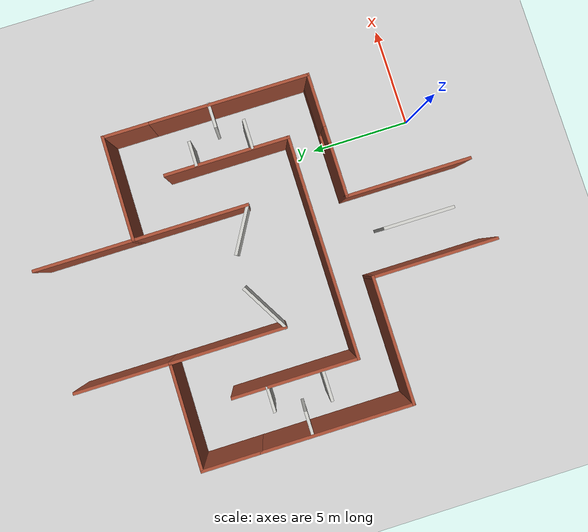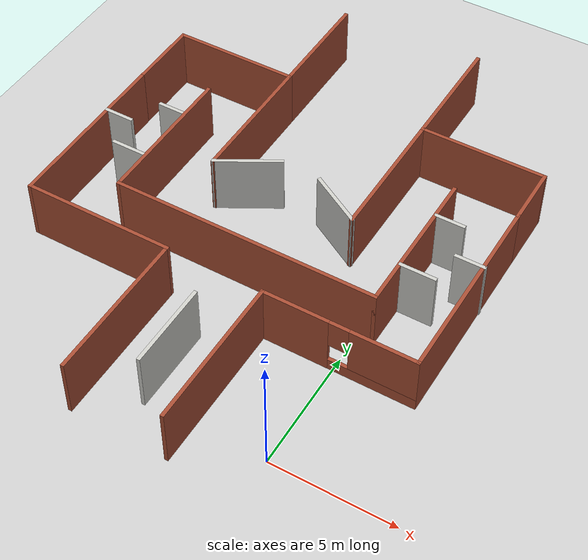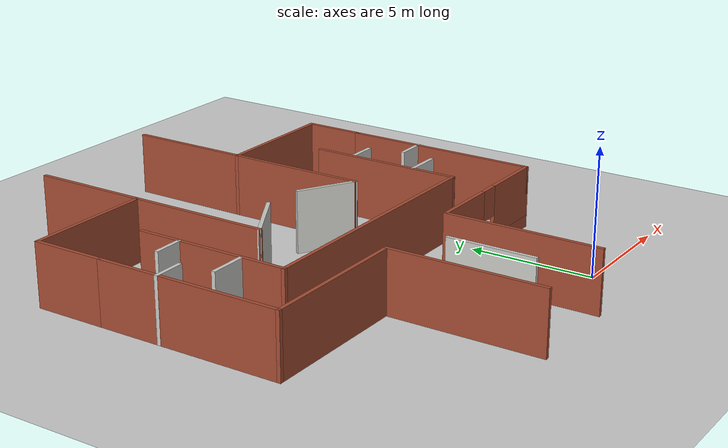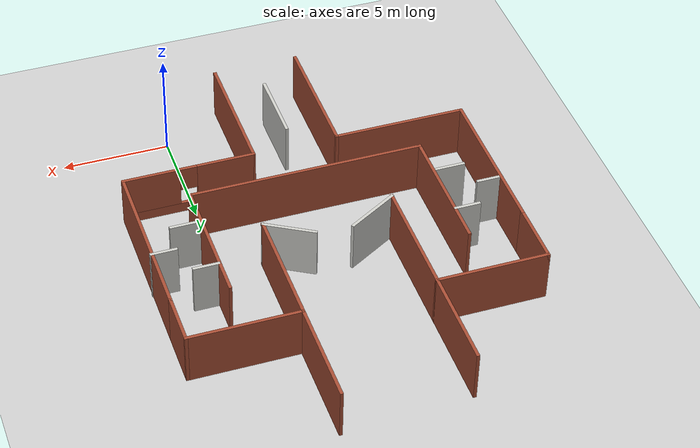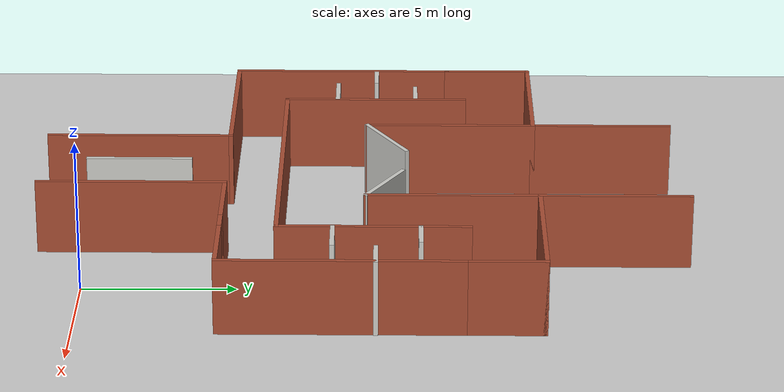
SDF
<sdf version="1.6">
 <world name="default">
  <light name="sun" type="directional">
   <pose>0 0 10 0 -0 0</pose>
   <diffuse>0.8 0.8 0.8 1</diffuse>
   <specular>0.2 0.2 0.2 1</specular>
   <attenuation>
    <range>1000</range>
    <constant>0.9</constant>
    <linear>0.01</linear>
    <quadratic>0.001</quadratic>
   </attenuation>
   <direction>-0.5 0.1 -0.9</direction>
  </light>
  <model name="ground_plane">
   <static>1</static>
   <link name="link">
    <collision name="collision">
     <geometry><plane><normal>0 0 1</normal><size>100 100</size></plane></geometry>
     <surface><friction><ode><mu>100</mu><mu2>50</mu2></ode></friction></surface>
    </collision>
    <visual name="visual">
     <cast_shadows>0</cast_shadows>
     <geometry><plane><normal>0 0 1</normal><size>100 100</size></plane></geometry>
     <material>
      <script><uri>file://media/materials/scripts/gazebo.material</uri><name>Gazebo/Grey</name></script>
     </material>
    </visual>
   </link>
  </model>
  <gravity>0 0 -9.8</gravity>
  <magnetic_field>6e-06 2.3e-05 -4.2e-05</magnetic_field>
  <atmosphere type="adiabatic"/>
  <physics name="default_physics" default="0" type="ode">
   <max_step_size>0.001</max_step_size>
   <real_time_factor>1</real_time_factor>
   <real_time_update_rate>1000</real_time_update_rate>
  </physics>
  <scene><ambient>0.4 0.4 0.4 1</ambient><background>0.7 0.7 0.7 1</background><shadows>1</shadows></scene>
  <audio><device>default</device></audio>
  <spherical_coordinates>
   <surface_model>EARTH_WGS84</surface_model>
   <latitude_deg>0</latitude_deg>
   <longitude_deg>0</longitude_deg>
   <elevation>0</elevation>
   <heading_deg>0</heading_deg>
  </spherical_coordinates>
  <model name="robotech_vc_maze">
   <pose>-4.88065 8.9736 0 0 -0 0</pose>
   <link name="Wall_13">
    <collision name="Wall_13_Collision">
     <geometry><box><size>3.5 0.15 2.5</size></box></geometry>
     <pose>0 0 1.25 0 -0 0</pose>
    </collision>
    <visual name="Wall_13_Visual">
     <pose>0 0 1.25 0 -0 0</pose>
     <geometry><box><size>3.5 0.15 2.5</size></box></geometry>
     <material>
      <script><uri>file://media/materials/scripts/gazebo.material</uri><name>Gazebo/CeilingTiled</name></script>
      <ambient>1 1 1 1</ambient>
     </material>
     <meta><layer>0</layer></meta>
    </visual>
    <pose>0.00196 -7.39954 0 0 -0 1.5708</pose>
   </link>
   <link name="Wall_15">
    <collision name="Wall_15_Collision">
     <geometry><box><size>6.25 0.15 2.5</size></box></geometry>
     <pose>0 0 1.25 0 -0 0</pose>
    </collision>
    <visual name="Wall_15_Visual">
     <pose>0 0 1.25 0 -0 0</pose>
     <geometry><box><size>6.25 0.15 2.5</size></box></geometry>
     <material>
      <script><uri>file://media/materials/scripts/gazebo.material</uri><name>Gazebo/Bricks</name></script>
      <ambient>1 1 1 1</ambient>
     </material>
     <meta><layer>0</layer></meta>
    </visual>
    <pose>1.97551 -7.52132 0 0 -0 1.5708</pose>
   </link>
   <link name="Wall_17">
    <collision name="Wall_17_Collision">
     <geometry><box><size>6.25 0.15 2.5</size></box></geometry>
     <pose>0 0 1.25 0 -0 0</pose>
    </collision>
    <visual name="Wall_17_Visual">
     <pose>0 0 1.25 0 -0 0</pose>
     <geometry><box><size>6.25 0.15 2.5</size></box></geometry>
     <material>
      <script><uri>file://media/materials/scripts/gazebo.material</uri><name>Gazebo/Bricks</name></script>
      <ambient>1 1 1 1</ambient>
     </material>
     <meta><layer>0</layer></meta>
    </visual>
    <pose>-5.06006 -4.47868 0 0 -0 3.14159</pose>
   </link>
   <link name="Wall_18">
    <collision name="Wall_18_Collision">
     <geometry><box><size>7.5 0.15 2.5</size></box></geometry>
     <pose>0 0 1.25 0 -0 0</pose>
    </collision>
    <visual name="Wall_18_Visual">
     <pose>0 0 1.25 0 -0 0</pose>
     <geometry><box><size>7.5 0.15 2.5</size></box></geometry>
     <material>
      <script><uri>file://media/materials/scripts/gazebo.material</uri><name>Gazebo/Bricks</name></script>
      <ambient>1 1 1 1</ambient>
     </material>
     <meta><layer>0</layer></meta>
    </visual>
    <pose>-8.11007 -0.803679 0 0 -0 1.5708</pose>
   </link>
   <link name="Wall_20">
    <pose>5.02551 -4.47132 0 0 -0 0</pose>
    <visual name="Wall_20_Visual_0">
     <pose>-1.74702 0 1.25 0 -0 0</pose>
     <geometry><box><size>2.75596 0.15 2.5</size></box></geometry>
     <material>
      <script><uri>file://media/materials/scripts/gazebo.material</uri><name>Gazebo/Bricks</name></script>
      <ambient>1 1 1 1</ambient>
     </material>
     <meta><layer>0</layer></meta>
    </visual>
    <collision name="Wall_20_Collision_0">
     <geometry><box><size>2.75596 0.15 2.5</size></box></geometry>
     <pose>-1.74702 0 1.25 0 -0 0</pose>
    </collision>
    <visual name="Wall_20_Visual_1">
     <pose>1.37798 0 0.25 0 -0 0</pose>
     <geometry><box><size>3.49404 0.15 0.5</size></box></geometry>
     <material>
      <script><uri>file://media/materials/scripts/gazebo.material</uri><name>Gazebo/Bricks</name></script>
      <ambient>1 1 1 1</ambient>
     </material>
     <meta><layer>0</layer></meta>
    </visual>
    <collision name="Wall_20_Collision_1">
     <geometry><box><size>3.49404 0.15 0.5</size></box></geometry>
     <pose>1.37798 0 0.25 0 -0 0</pose>
    </collision>
    <visual name="Wall_20_Visual_2">
     <pose>1.77798 0 1.5 0 -0 0</pose>
     <geometry><box><size>2.69404 0.15 2</size></box></geometry>
     <material>
      <script><uri>file://media/materials/scripts/gazebo.material</uri><name>Gazebo/Bricks</name></script>
      <ambient>1 1 1 1</ambient>
     </material>
     <meta><layer>0</layer></meta>
    </visual>
    <collision name="Wall_20_Collision_2">
     <geometry><box><size>2.69404 0.15 2</size></box></geometry>
     <pose>1.77798 0 1.5 0 -0 0</pose>
    </collision>
    <visual name="Wall_20_Visual_3">
     <pose>0.03096 0 1.9 0 -0 0</pose>
     <geometry><box><size>0.8 0.15 1.2</size></box></geometry>
     <material>
      <script><uri>file://media/materials/scripts/gazebo.material</uri><name>Gazebo/Bricks</name></script>
      <ambient>1 1 1 1</ambient>
     </material>
     <meta><layer>0</layer></meta>
    </visual>
    <collision name="Wall_20_Collision_3">
     <geometry><box><size>0.8 0.15 1.2</size></box></geometry>
     <pose>0.03096 0 1.9 0 -0 0</pose>
    </collision>
   </link>
   <link name="Wall_21">
    <collision name="Wall_21_Collision">
     <geometry><box><size>8 0.15 2.5</size></box></geometry>
     <pose>0 0 1.25 0 -0 0</pose>
    </collision>
    <visual name="Wall_21_Visual">
     <pose>0 0 1.25 0 -0 0</pose>
     <geometry><box><size>8 0.15 2.5</size></box></geometry>
     <material>
      <script><uri>file://media/materials/scripts/gazebo.material</uri><name>Gazebo/Bricks</name></script>
      <ambient>1 1 1 1</ambient>
     </material>
     <meta><layer>0</layer></meta>
    </visual>
    <pose>8.07551 -0.54632 0 0 -0 1.5708</pose>
   </link>
   <link name="Wall_25">
    <collision name="Wall_25_Collision">
     <geometry><box><size>11 0.15 2.5</size></box></geometry>
     <pose>0 0 1.25 0 -0 0</pose>
    </collision>
    <visual name="Wall_25_Visual">
     <pose>0 0 1.25 0 -0 0</pose>
     <geometry><box><size>11 0.15 2.5</size></box></geometry>
     <material>
      <script><uri>file://media/materials/scripts/gazebo.material</uri><name>Gazebo/Bricks</name></script>
      <ambient>1 1 1 1</ambient>
     </material>
     <meta><layer>0</layer></meta>
    </visual>
    <pose>0.045922 -2.67982 0 0 -0 0</pose>
   </link>
   <link name="Wall_34">
    <collision name="Wall_34_Collision">
     <geometry><box><size>1.25 0.15 2.5</size></box></geometry>
     <pose>0 0 1.25 0 -0 0</pose>
    </collision>
    <visual name="Wall_34_Visual">
     <pose>0 0 1.25 0 -0 0</pose>
     <geometry><box><size>1.25 0.15 2.5</size></box></geometry>
     <material>
      <script><uri>file://media/materials/scripts/gazebo.material</uri><name>Gazebo/CeilingTiled</name></script>
      <ambient>1 1 1 1</ambient>
     </material>
     <meta><layer>0</layer></meta>
    </visual>
    <pose>-7.56291 0.395233 0 0 -0 0</pose>
   </link>
   <link name="Wall_36">
    <collision name="Wall_36_Collision">
     <geometry><box><size>1.25 0.15 2.5</size></box></geometry>
     <pose>0 0 1.25 0 -0 0</pose>
    </collision>
    <visual name="Wall_36_Visual">
     <pose>0 0 1.25 0 -0 0</pose>
     <geometry><box><size>1.25 0.15 2.5</size></box></geometry>
     <material>
      <script><uri>file://media/materials/scripts/gazebo.material</uri><name>Gazebo/CeilingTiled</name></script>
      <ambient>1 1 1 1</ambient>
     </material>
     <meta><layer>0</layer></meta>
    </visual>
    <pose>-5.9554 1.74885 0 0 -0 3.14159</pose>
   </link>
   <link name="Wall_38">
    <collision name="Wall_38_Collision">
     <geometry><box><size>6.25 0.15 2.5</size></box></geometry>
     <pose>0 0 1.25 0 -0 0</pose>
    </collision>
    <visual name="Wall_38_Visual">
     <pose>0 0 1.25 0 -0 0</pose>
     <geometry><box><size>6.25 0.15 2.5</size></box></geometry>
     <material>
      <script><uri>file://media/materials/scripts/gazebo.material</uri><name>Gazebo/Bricks</name></script>
      <ambient>1 1 1 1</ambient>
     </material>
     <meta><layer>0</layer></meta>
    </visual>
    <pose>-5.37908 0.370179 0 0 -0 1.5708</pose>
   </link>
   <link name="Wall_43">
    <collision name="Wall_43_Collision">
     <geometry><box><size>1.5 0.15 2.5</size></box></geometry>
     <pose>0 0 1.25 0 -0 0</pose>
    </collision>
    <visual name="Wall_43_Visual">
     <pose>0 0 1.25 0 -0 0</pose>
     <geometry><box><size>1.5 0.15 2.5</size></box></geometry>
     <material>
      <script><uri>file://media/materials/scripts/gazebo.material</uri><name>Gazebo/CeilingTiled</name></script>
      <ambient>1 1 1 1</ambient>
     </material>
     <meta><layer>0</layer></meta>
    </visual>
    <pose>-6.14109 -0.935126 0 0 -0 3.14159</pose>
   </link>
   <link name="Wall_45">
    <collision name="Wall_45_Collision">
     <geometry><box><size>6.25 0.15 2.5</size></box></geometry>
     <pose>0 0 1.25 0 -0 0</pose>
    </collision>
    <visual name="Wall_45_Visual">
     <pose>0 0 1.25 0 -0 0</pose>
     <geometry><box><size>6.25 0.15 2.5</size></box></geometry>
     <material>
      <script><uri>file://media/materials/scripts/gazebo.material</uri><name>Gazebo/Bricks</name></script>
      <ambient>1 1 1 1</ambient>
     </material>
     <meta><layer>0</layer></meta>
    </visual>
    <pose>5.47092 0.370179 0 0 -0 1.5708</pose>
   </link>
   <link name="Wall_47">
    <collision name="Wall_47_Collision">
     <geometry><box><size>1.5 0.15 2.5</size></box></geometry>
     <pose>0 0 1.25 0 -0 0</pose>
    </collision>
    <visual name="Wall_47_Visual">
     <pose>0 0 1.25 0 -0 0</pose>
     <geometry><box><size>1.5 0.15 2.5</size></box></geometry>
     <material>
      <script><uri>file://media/materials/scripts/gazebo.material</uri><name>Gazebo/CeilingTiled</name></script>
      <ambient>1 1 1 1</ambient>
     </material>
     <meta><layer>0</layer></meta>
    </visual>
    <pose>6.18468 -0.900812 0 0 -0 0</pose>
   </link>
   <link name="Wall_49">
    <collision name="Wall_49_Collision">
     <geometry><box><size>1.25 0.15 2.5</size></box></geometry>
     <pose>0 0 1.25 0 -0 0</pose>
    </collision>
    <visual name="Wall_49_Visual">
     <pose>0 0 1.25 0 -0 0</pose>
     <geometry><box><size>1.25 0.15 2.5</size></box></geometry>
     <material>
      <script><uri>file://media/materials/scripts/gazebo.material</uri><name>Gazebo/CeilingTiled</name></script>
      <ambient>1 1 1 1</ambient>
     </material>
     <meta><layer>0</layer></meta>
    </visual>
    <pose>7.56291 0.472024 0 0 -0 3.14159</pose>
   </link>
   <link name="Wall_51">
    <collision name="Wall_51_Collision">
     <geometry><box><size>1.25 0.15 2.5</size></box></geometry>
     <pose>0 0 1.25 0 -0 0</pose>
    </collision>
    <visual name="Wall_51_Visual">
     <pose>0 0 1.25 0 -0 0</pose>
     <geometry><box><size>1.25 0.15 2.5</size></box></geometry>
     <material>
      <script><uri>file://media/materials/scripts/gazebo.material</uri><name>Gazebo/CeilingTiled</name></script>
      <ambient>1 1 1 1</ambient>
     </material>
     <meta><layer>0</layer></meta>
    </visual>
    <pose>6.05968 1.87917 0 0 -0 0</pose>
   </link>
   <link name="Wall_56">
    <collision name="Wall_56_Collision">
     <geometry><box><size>3 0.15 2.5</size></box></geometry>
     <pose>0 0 1.25 0 -0 0</pose>
    </collision>
    <visual name="Wall_56_Visual">
     <pose>0 0 1.25 0 -0 0</pose>
     <geometry><box><size>3 0.15 2.5</size></box></geometry>
     <material>
      <script><uri>file://media/materials/scripts/gazebo.material</uri><name>Gazebo/Bricks</name></script>
      <ambient>1 1 1 1</ambient>
     </material>
     <meta><layer>0</layer></meta>
    </visual>
    <pose>-8.11007 4.29632 0 0 -0 1.5708</pose>
   </link>
   <link name="Wall_57">
    <collision name="Wall_57_Collision">
     <geometry><box><size>5.25 0.15 2.5</size></box></geometry>
     <pose>0 0 1.25 0 -0 0</pose>
    </collision>
    <visual name="Wall_57_Visual">
     <pose>0 0 1.25 0 -0 0</pose>
     <geometry><box><size>5.25 0.15 2.5</size></box></geometry>
     <material>
      <script><uri>file://media/materials/scripts/gazebo.material</uri><name>Gazebo/Bricks</name></script>
      <ambient>1 1 1 1</ambient>
     </material>
     <meta><layer>0</layer></meta>
    </visual>
    <pose>-5.56006 5.72132 0 0 -0 0</pose>
   </link>
   <link name="Wall_58">
    <collision name="Wall_58_Collision">
     <geometry><box><size>4.75 0.15 2.5</size></box></geometry>
     <pose>0 0 1.25 0 -0 0</pose>
    </collision>
    <visual name="Wall_58_Visual">
     <pose>0 0 1.25 0 -0 0</pose>
     <geometry><box><size>4.75 0.15 2.5</size></box></geometry>
     <material>
      <script><uri>file://media/materials/scripts/gazebo.material</uri><name>Gazebo/Bricks</name></script>
      <ambient>1 1 1 1</ambient>
     </material>
     <meta><layer>0</layer></meta>
    </visual>
    <pose>-3.01006 8.02132 0 0 -0 1.5708</pose>
   </link>
   <link name="Wall_60">
    <collision name="Wall_60_Collision">
     <geometry><box><size>2.5 0.15 2.5</size></box></geometry>
     <pose>0 0 1.25 0 -0 0</pose>
    </collision>
    <visual name="Wall_60_Visual">
     <pose>0 0 1.25 0 -0 0</pose>
     <geometry><box><size>2.5 0.15 2.5</size></box></geometry>
     <material>
      <script><uri>file://media/materials/scripts/gazebo.material</uri><name>Gazebo/Bricks</name></script>
      <ambient>1 1 1 1</ambient>
     </material>
     <meta><layer>0</layer></meta>
    </visual>
    <pose>8.07551 4.55368 0 0 -0 1.5708</pose>
   </link>
   <link name="Wall_64">
    <collision name="Wall_64_Collision">
     <geometry><box><size>5.25 0.15 2.5</size></box></geometry>
     <pose>0 0 1.25 0 -0 0</pose>
    </collision>
    <visual name="Wall_64_Visual">
     <pose>0 0 1.25 0 -0 0</pose>
     <geometry><box><size>5.25 0.15 2.5</size></box></geometry>
     <material>
      <script><uri>file://media/materials/scripts/gazebo.material</uri><name>Gazebo/Bricks</name></script>
      <ambient>1 1 1 1</ambient>
     </material>
     <meta><layer>0</layer></meta>
    </visual>
    <pose>5.52551 5.72868 0 0 -0 3.14159</pose>
   </link>
   <link name="Wall_67">
    <collision name="Wall_67_Collision">
     <geometry><box><size>5 0.15 2.5</size></box></geometry>
     <pose>0 0 1.25 0 -0 0</pose>
    </collision>
    <visual name="Wall_67_Visual">
     <pose>0 0 1.25 0 -0 0</pose>
     <geometry><box><size>5 0.15 2.5</size></box></geometry>
     <material>
      <script><uri>file://media/materials/scripts/gazebo.material</uri><name>Gazebo/Bricks</name></script>
      <ambient>1 1 1 1</ambient>
     </material>
     <meta><layer>0</layer></meta>
    </visual>
    <pose>2.97551 8.15368 0 0 -0 1.5708</pose>
   </link>
   <link name="Wall_69">
    <collision name="Wall_69_Collision">
     <geometry><box><size>5.75 0.15 2.5</size></box></geometry>
     <pose>0 0 1.25 0 -0 0</pose>
    </collision>
    <visual name="Wall_69_Visual">
     <pose>0 0 1.25 0 -0 0</pose>
     <geometry><box><size>5.75 0.15 2.5</size></box></geometry>
     <material>
      <script><uri>file://media/materials/scripts/gazebo.material</uri><name>Gazebo/Bricks</name></script>
      <ambient>1 1 1 1</ambient>
     </material>
     <meta><layer>0</layer></meta>
    </visual>
    <pose>2.97551 2.92868 0 0 -0 -1.5708</pose>
   </link>
   <link name="Wall_71">
    <collision name="Wall_71_Collision">
     <geometry><box><size>5.75 0.15 2.5</size></box></geometry>
     <pose>0 0 1.25 0 -0 0</pose>
    </collision>
    <visual name="Wall_71_Visual">
     <pose>0 0 1.25 0 -0 0</pose>
     <geometry><box><size>5.75 0.15 2.5</size></box></geometry>
     <material>
      <script><uri>file://media/materials/scripts/gazebo.material</uri><name>Gazebo/Bricks</name></script>
      <ambient>1 1 1 1</ambient>
     </material>
     <meta><layer>0</layer></meta>
    </visual>
    <pose>-3.01006 2.92132 0 0 -0 -1.5708</pose>
   </link>
   <link name="Wall_73">
    <collision name="Wall_73_Collision">
     <geometry><box><size>2.75 0.15 2.5</size></box></geometry>
     <pose>0 0 1.25 0 -0 0</pose>
    </collision>
    <visual name="Wall_73_Visual">
     <pose>0 0 1.25 0 -0 0</pose>
     <geometry><box><size>2.75 0.15 2.5</size></box></geometry>
     <material>
      <script><uri>file://media/materials/scripts/gazebo.material</uri><name>Gazebo/CeilingTiled</name></script>
      <ambient>1 1 1 1</ambient>
     </material>
     <meta><layer>0</layer></meta>
    </visual>
    <pose>-1.88423 0.77132 0 0 -0 0.523599</pose>
   </link>
   <link name="Wall_75">
    <collision name="Wall_75_Collision">
     <geometry><box><size>2.5 0.15 2.5</size></box></geometry>
     <pose>0 0 1.25 0 -0 0</pose>
    </collision>
    <visual name="Wall_75_Visual">
     <pose>0 0 1.25 0 -0 0</pose>
     <geometry><box><size>2.5 0.15 2.5</size></box></geometry>
     <material>
      <script><uri>file://media/materials/scripts/gazebo.material</uri><name>Gazebo/CeilingTiled</name></script>
      <ambient>1 1 1 1</ambient>
     </material>
     <meta><layer>0</layer></meta>
    </visual>
    <pose>1.95793 0.71618 0 0 -0 2.61799</pose>
   </link>
   <link name="Wall_9">
    <collision name="Wall_9_Collision">
     <geometry><box><size>6.25 0.15 2.5</size></box></geometry>
     <pose>0 0 1.25 0 -0 0</pose>
    </collision>
    <visual name="Wall_9_Visual">
     <pose>0 0 1.25 0 -0 0</pose>
     <geometry><box><size>6.25 0.15 2.5</size></box></geometry>
     <material>
      <script><uri>file://media/materials/scripts/gazebo.material</uri><name>Gazebo/Bricks</name></script>
      <ambient>1 1 1 1</ambient>
     </material>
     <meta><layer>0</layer></meta>
    </visual>
    <pose>-2.01006 -7.52868 0 0 -0 1.5708</pose>
   </link>
   <static>1</static>
  </model>
 </world>
</sdf>
